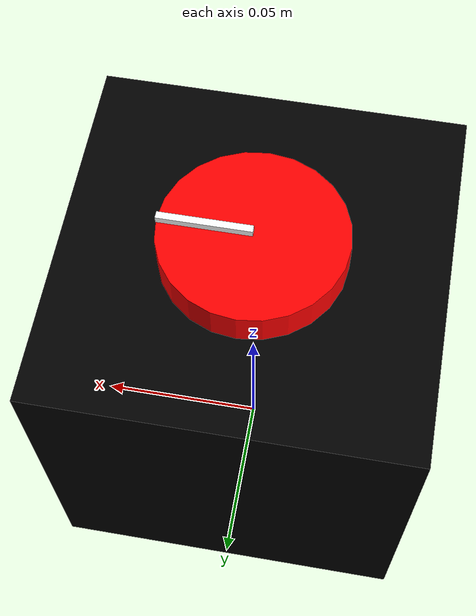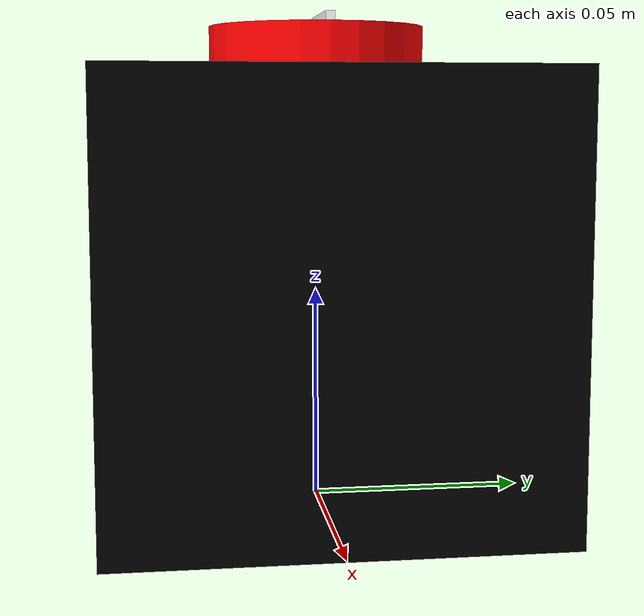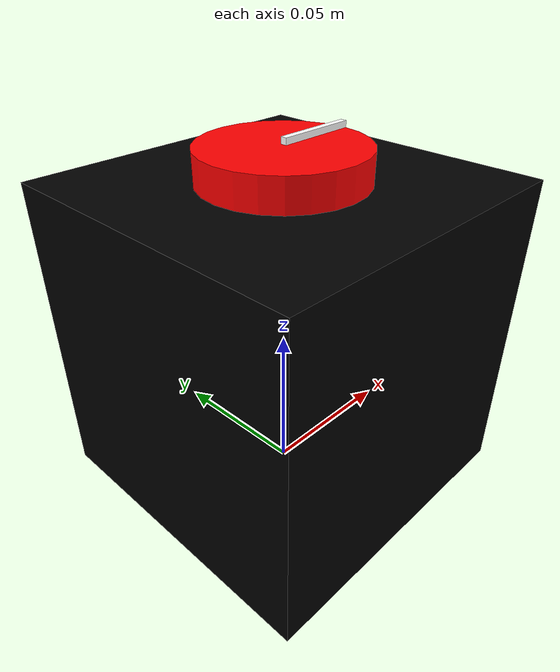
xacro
<?xml version="1.0"?>
<robot name="qube" xmlns:xacro="http://www.ros.org/wiki/xacro">

    <xacro:arg name="baud_rate" default="115200"/>
    <xacro:arg name="device" default="/dev/ttyACM0"/>
    <xacro:arg name="simulation" default="false"/>

    <xacro:include filename="$(find qube_description)/urdf/qube.macro.xacro" />
    <xacro:include filename="$(find qube_driver)/ros2_control/qube_driver.ros2_control.xacro" />

    <link name="world"/>

    <xacro:qube prefix=""/>

    <joint name="world_joint" type="fixed">
        <parent link="world"/>
        <child link="base_link"/>
        <origin xyz="0 0 0" rpy="0 0 0"/>
    </joint>

    <xacro:qube_driver_ros2_control
        name="qube_driver"
        prefix=""
        baud_rate="$(arg baud_rate)"
        device="$(arg device)"
        simulation="$(arg simulation)"/>

</robot>

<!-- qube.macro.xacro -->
<robot xmlns:xacro="http://www.ros.org/wiki/xacro">

    <!-- Makro for hele modellen -->
    <xacro:macro name="qube" params="prefix">

        <!-- Properties -->
        <xacro:property name="stator_size" value="0.102" />
        <xacro:property name="rotor_height" value="0.01" />
        <xacro:property name="rotor_radius" value="0.025" />
        <xacro:property name="angle_length" value="0.025" />
        <xacro:property name="angle_width" value="0.002" />
        <xacro:property name="angle_height" value="0.002" />

        <!-- Materials -->
        <material name="black">
            <color rgba="0 0 0 1"/>
        </material>

        <material name="red">
            <color rgba="1 0 0 1"/>
        </material>

        <material name="white">
            <color rgba="1 1 1 1"/>
        </material>

        <!-- Links -->
        <link name="${prefix}base_link"/>

        <link name="${prefix}stator_link">
            <visual>
                <geometry>
                    <box size="${stator_size} ${stator_size} ${stator_size}"/>
                </geometry>
                <material name="black"/>
            </visual>
        </link>

        <link name="${prefix}rotor_link">
            <visual>
                <geometry>
                    <cylinder length="${rotor_height}" radius="${rotor_radius}"/>
                </geometry>
                <material name="red"/>
            </visual>
        </link>

        <link name="${prefix}angle_link">
            <visual>
                <geometry>
                    <box size="${angle_length} ${angle_width} ${angle_height}"/>
                </geometry>
                <material name="white"/>
            </visual>
        </link>

        <!-- Joints -->

        <joint name="${prefix}base_joint" type="fixed">
            <parent link="${prefix}base_link"/>
            <child link="${prefix}stator_link"/>
            <origin xyz="0 0 ${stator_size/2}" rpy="0 0 0"/>
        </joint>

        <joint name="${prefix}motor_joint" type="revolute">
            <parent link="${prefix}stator_link"/>
            <child link="${prefix}rotor_link"/>
            <origin xyz="0 0 ${(stator_size/2) + (rotor_height/2)}" rpy="0 0 0"/>
            <axis xyz="0 0 1"/>
            <limit lower="-3.14159" upper="3.14159" effort="1.0" velocity="1.0"/>
        </joint>

        <joint name="${prefix}rotor_joint" type="fixed">
            <parent link="${prefix}rotor_link"/>
            <child link="${prefix}angle_link"/>
            <origin xyz="${angle_length/2} 0 ${(rotor_height/2) + (angle_height/2)}" rpy="0 0 0"/>
        </joint>

    </xacro:macro>

</robot>
